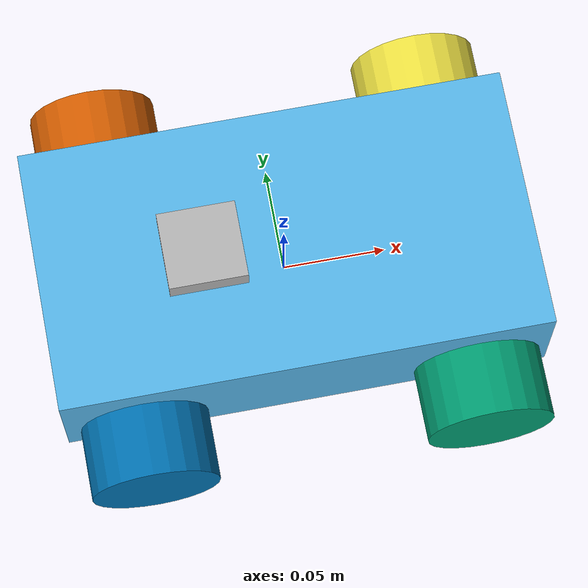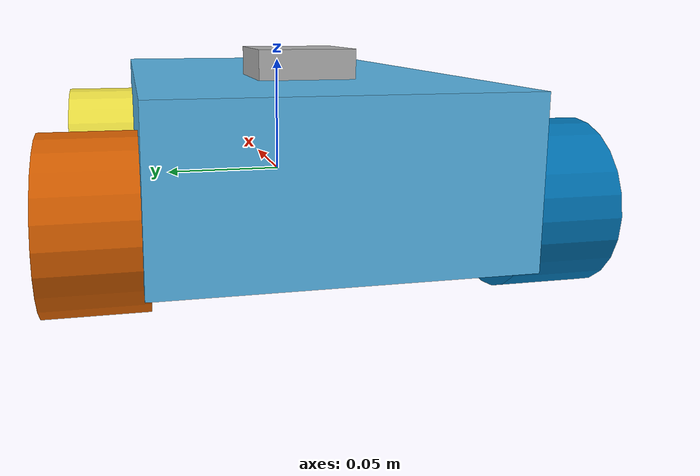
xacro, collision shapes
<?xml version="1.0"?>
<robot name="x3_mecanum" xmlns:xacro="http://www.ros.org/wiki/xacro">
  <xacro:arg name="prefix" default="" />
  <xacro:arg name="use_gazebo" default="false" />
  <xacro:property name="M_PI" value="3.1415926535897931" />
  <xacro:property name="camera_offset_x" value="0.12521" />
  <xacro:property name="camera_offset_y" value="0.0017204" />
  <xacro:property name="camera_offset_z" value="0.10195" />
  <xacro:property name="model_name" value="x3_mecanum" />
  <xacro:property name="model_dir" value="$(find ugv_descriptions)/models/${model_name}" />
  <xacro:property name="urdf_dir" value="${model_dir}/urdf" />
  <xacro:property name="mesh_dir" value="package://ugv_descriptions/models/${model_name}/meshes" />

  <xacro:macro name="box_inertial_matrix" params="m l w h">
    <inertial>
      <origin xyz="0 0 0" rpy="0 0 0" />
      <mass value="${m}" />
      <inertia ixx="${m*(l*l+h*h)/12}" ixy="0" ixz="0"
        iyy="${m*(w*w+l*l)/12}" iyz="0"
        izz="${m*(w*w+h*h)/12}" />
    </inertial>
  </xacro:macro>

  <xacro:include
    filename="${urdf_dir}/body.xacro" />

  <xacro:include
    filename="${urdf_dir}/wheels.xacro" />

  <xacro:include
    filename="${urdf_dir}/lidar.xacro" />

  <xacro:include
    filename="${urdf_dir}/imu.xacro" />

  <xacro:include
    filename="${urdf_dir}/control.xacro" />

  <xacro:if value="$(arg use_gazebo)">
    <xacro:include
      filename="${urdf_dir}/gazebo.xacro" />
  </xacro:if>

</robot>

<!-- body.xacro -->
<robot xmlns:xacro="http://wiki.ros.org/xacro">
  <xacro:property name="box_length" value="0.236" />
  <xacro:property name="box_width" value="0.128" />
  <xacro:property name="box_height" value="0.06" />
  <xacro:property name="box_mass" value="0.6" />

  <link name="$(arg prefix)dummy" />
  <joint name="$(arg prefix)base_link_join" type="fixed">
    <origin xyz="0 0 0.035" rpy="0 0 0" />
    <parent link="$(arg prefix)dummy" />
    <child link="$(arg prefix)base_link" />
  </joint>

  <link name="$(arg prefix)base_link">
    <xacro:box_inertial_matrix m="${box_mass}" w="${box_width}" h="${box_height}" l="${box_length}" />
    <visual>
      <geometry>
        <mesh filename="${mesh_dir}/base_link.dae" />
      </geometry>
    </visual>
    <collision>
      <origin xyz="0 0 -0.02" rpy="0 0 0" />
      <geometry>
        <box size="${box_length} ${box_width} ${box_height}" />
      </geometry>
    </collision>
  </link>

</robot>

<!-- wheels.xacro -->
<robot xmlns:xacro="http://wiki.ros.org/xacro">

  <xacro:property name="wheel_radius" value="0.031" />
  <xacro:property name="wheel_zoff" value="0.035" />

  <xacro:macro name="create_wheel_link"
    params="
        link_name
        mesh_name">
    <link name="${link_name}">
      <visual>
        <origin rpy="${pi / 2.0} 0 0" xyz="0 0 0" />
        <geometry>
          <mesh filename="${mesh_dir}/${mesh_name}.dae" />
        </geometry>
      </visual>
      <collision>
        <geometry>
          <cylinder length="0.035" radius="${wheel_radius}" />
        </geometry>
      </collision>
      <inertial>
        <mass value="0.053774" />
        <inertia
          ixx="2.1E-05"
          iyy="2.1E-05"
          izz="3.3E-05"
          ixy="0.0"
          ixz="0.0"
          iyz="0.0" />
      </inertial>
    </link>
  </xacro:macro>

  <xacro:macro name="create_wheel_joint"
    params="
        joint_name
        link_name
        xyz_offset">
    <joint name="${joint_name}" type="continuous">
      <parent link="$(arg prefix)base_link" />
      <child link="${link_name}" />
      <origin rpy="${pi / -2.0} 0 0" xyz="${xyz_offset}" />
      <axis xyz="0 0 1" />
      <limit effort="10000.0" lower="-1.79769e+308" upper="1.79769e+308" velocity="15.1" />
    </joint>
  </xacro:macro>

  <xacro:create_wheel_link
    link_name="$(arg prefix)right_front_wheel_link"
    mesh_name="right_front">
  </xacro:create_wheel_link>

  <xacro:create_wheel_link
    link_name="$(arg prefix)left_front_wheel_link"
    mesh_name="left_front">
  </xacro:create_wheel_link>

  <xacro:create_wheel_link
    link_name="$(arg prefix)right_rear_wheel_link"
    mesh_name="right_rear">
  </xacro:create_wheel_link>

  <xacro:create_wheel_link
    link_name="$(arg prefix)left_rear_wheel_link"
    mesh_name="left_rear">
  </xacro:create_wheel_link>

  <xacro:create_wheel_joint
    joint_name="$(arg prefix)right_front_wheel_joint"
    link_name="$(arg prefix)right_front_wheel_link"
    xyz_offset="0.083 -0.081 -${wheel_zoff}"
  />
  <xacro:create_wheel_joint
    joint_name="$(arg prefix)left_front_wheel_joint"
    link_name="$(arg prefix)left_front_wheel_link"
    xyz_offset="0.083 0.079 -${wheel_zoff}"
  />
  <xacro:create_wheel_joint
    joint_name="$(arg prefix)right_rear_wheel_joint"
    link_name="$(arg prefix)right_rear_wheel_link"
    xyz_offset="-0.08 -0.081 -${wheel_zoff}"
  />
  <xacro:create_wheel_joint
    joint_name="$(arg prefix)left_rear_wheel_joint"
    link_name="$(arg prefix)left_rear_wheel_link"
    xyz_offset="-0.08 0.079 -${wheel_zoff}"
  />

  <link name="base_footprint" />
  <joint name="footprint_joint" type="fixed">
    <parent link="base_link" />
    <child link="base_footprint" />
    <origin xyz="0.0 0.0 ${-(wheel_radius+wheel_zoff)}" rpy="0 0 0" />
  </joint>
</robot>

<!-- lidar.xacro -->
<robot xmlns:xacro="http://ros.org/wiki/xacro">

  <xacro:property name="lidar_box_length" value="0.0377" />
  <xacro:property name="lidar_box_width" value="0.0375" />
  <xacro:property name="lidar_box_height" value="0.033" />

  <link name="$(arg prefix)lidar_link">
    <xacro:box_inertial_matrix m="0.001" l="${lidar_box_length}" w="${lidar_box_width}"
      h="${lidar_box_height}" />
    <visual>
      <origin xyz="0 0 0 " rpy="0 0 0" />
      <geometry>
        <mesh
          filename="${mesh_dir}/lidar_link.dae" />
      </geometry>
    </visual>
    <collision>
      <origin xyz="0 0 0 " rpy="0 0 0" />
      <geometry>
        <box size="${lidar_box_length} ${lidar_box_width} ${lidar_box_height}" />
      </geometry>
    </collision>
  </link>

  <joint name="$(arg prefix)laser_joint" type="fixed">
    <origin xyz="-0.039 0 0.005" rpy="0 0 0" />
    <parent link="$(arg prefix)base_link" />
    <child link="$(arg prefix)lidar_link" />
  </joint>

</robot>

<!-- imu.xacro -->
<robot xmlns:xacro="http://ros.org/wiki/xacro">

    <xacro:property name="imu_box_length" value="0.02" />
    <xacro:property name="imu_box_width" value="0.01" />
    <xacro:property name="imu_box_height" value="0.005" />

    <link name="$(arg prefix)imu_link">
        <xacro:box_inertial_matrix m="0.001" l="${imu_box_length}" w="${imu_box_width}"
            h="${imu_box_height}" />
        <visual>
            <origin xyz="0 0 0 " rpy="0 0 0" />
            <geometry>
                <box size="${imu_box_length} ${imu_box_width} ${imu_box_height}" />
            </geometry>
        </visual>
        <collision>
            <origin xyz="0 0 0 " rpy="0 0 0" />
            <geometry>
                <box size="${imu_box_length} ${imu_box_width} ${imu_box_height}" />
            </geometry>
        </collision>
    </link>

    <joint name="$(arg prefix)imu_joint" type="fixed">
        <origin xyz="-0.039 0 0.005" rpy="0 0 0" />
        <parent link="$(arg prefix)base_link" />
        <child link="$(arg prefix)imu_link" />
    </joint>

</robot>
